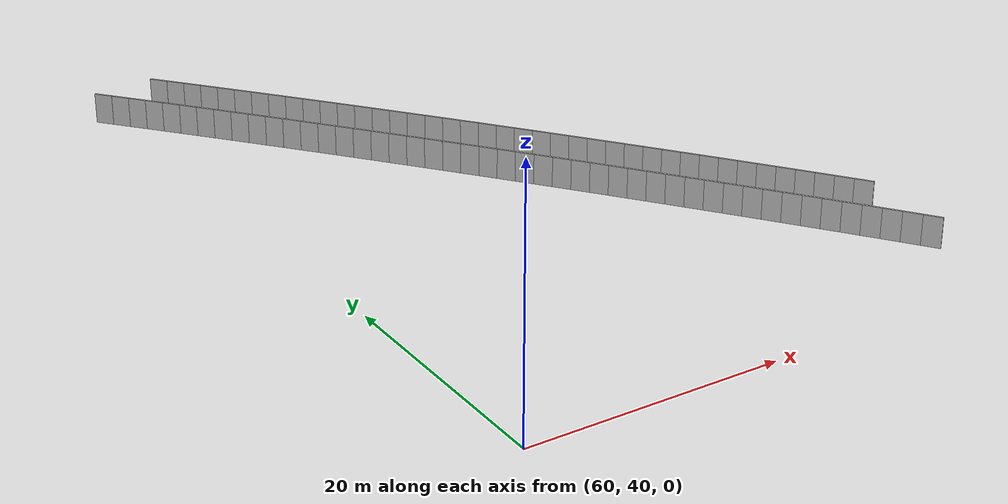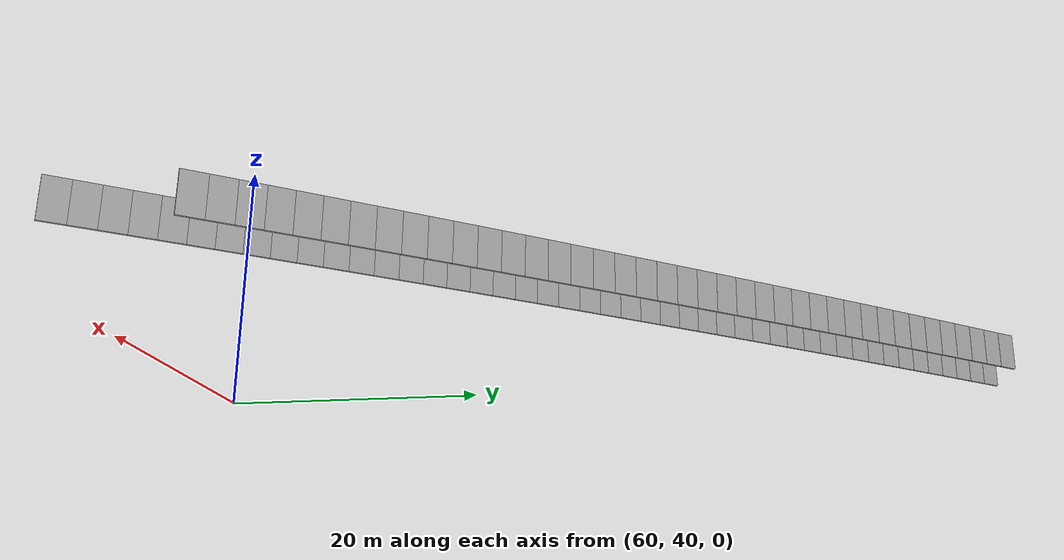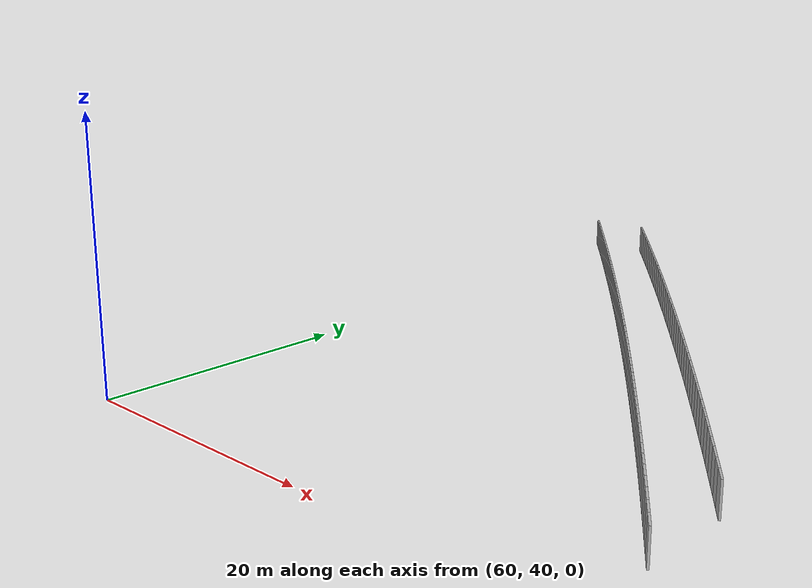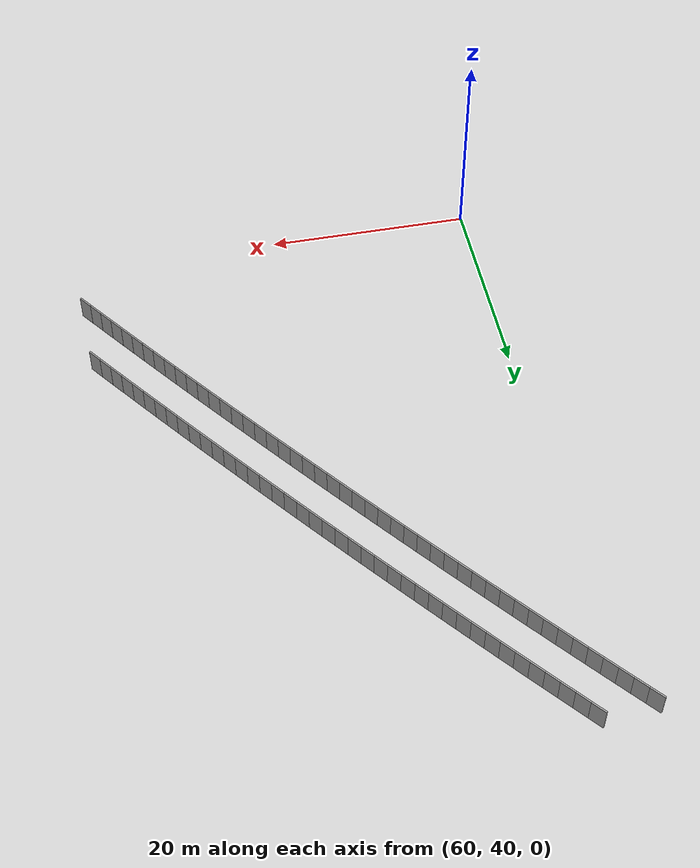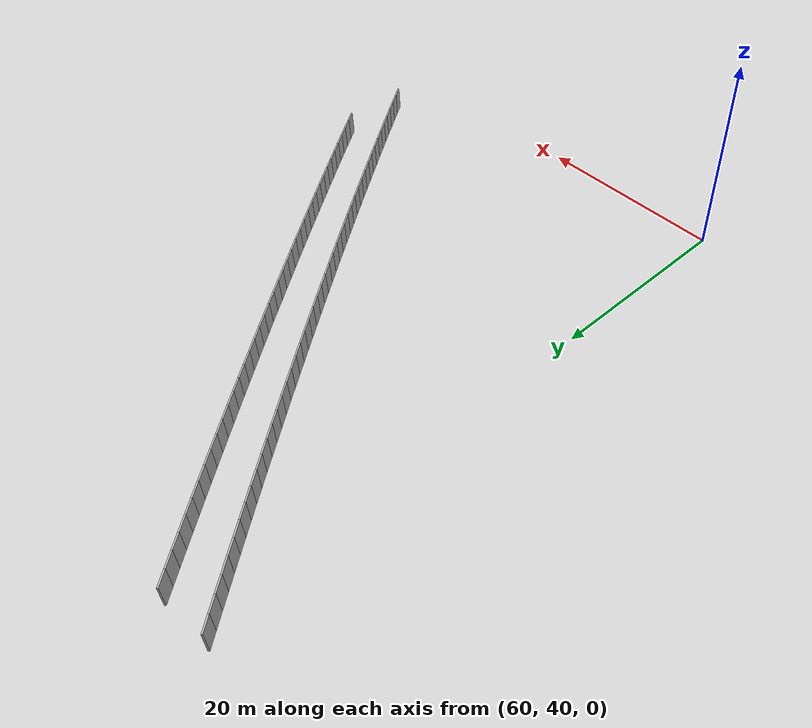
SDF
<?xml version="1.0" ?>
<sdf version="1.6">
  <model name="sps_2019">
    <pose frame="">0 0 0 0 -0 0</pose>
    <static>1</static>
    <self_collide>0</self_collide>
    <allow_auto_disable>0</allow_auto_disable>
    <link name="Wall10363">
      <kinematic>0</kinematic>
      <gravity>1</gravity>
      <self_collide>0</self_collide>
      <collision name="collision">
        <geometry>
          <box>
            <size>1.49648 0.15 2.5</size>
          </box>
        </geometry>
        <pose frame="">0 0 0 0 -0 0</pose>
      </collision>
      <visual name="visual">
        <geometry>
          <box>
            <size>1.49648 0.15 2.5</size>
          </box>
        </geometry>
        <pose frame="">0 0 0 0 -0 0</pose>
        <cast_shadows>1</cast_shadows>
        <transparency>0.0</transparency>
      </visual>
      <pose frame="">99.9647 46.8239 1.25 0 -0 2.20621</pose>
    </link>
    <link name="Wall10364">
      <kinematic>0</kinematic>
      <gravity>1</gravity>
      <self_collide>0</self_collide>
      <collision name="collision">
        <geometry>
          <box>
            <size>1.49617 0.15 2.5</size>
          </box>
        </geometry>
        <pose frame="">0 0 0 0 -0 0</pose>
      </collision>
      <visual name="visual">
        <geometry>
          <box>
            <size>1.49617 0.15 2.5</size>
          </box>
        </geometry>
        <pose frame="">0 0 0 0 -0 0</pose>
        <cast_shadows>1</cast_shadows>
        <transparency>0.0</transparency>
      </visual>
      <pose frame="">99.0753 48.0272 1.25 0 -0 2.2084</pose>
    </link>
    <link name="Wall10365">
      <kinematic>0</kinematic>
      <gravity>1</gravity>
      <self_collide>0</self_collide>
      <collision name="collision">
        <geometry>
          <box>
            <size>1.49663 0.15 2.5</size>
          </box>
        </geometry>
        <pose frame="">0 0 0 0 -0 0</pose>
      </collision>
      <visual name="visual">
        <geometry>
          <box>
            <size>1.49663 0.15 2.5</size>
          </box>
        </geometry>
        <pose frame="">0 0 0 0 -0 0</pose>
        <cast_shadows>1</cast_shadows>
        <transparency>0.0</transparency>
      </visual>
      <pose frame="">98.184 49.2292 1.25 0 -0 2.20929</pose>
    </link>
    <link name="Wall10366">
      <kinematic>0</kinematic>
      <gravity>1</gravity>
      <self_collide>0</self_collide>
      <collision name="collision">
        <geometry>
          <box>
            <size>1.49655 0.15 2.5</size>
          </box>
        </geometry>
        <pose frame="">0 0 0 0 -0 0</pose>
      </collision>
      <visual name="visual">
        <geometry>
          <box>
            <size>1.49655 0.15 2.5</size>
          </box>
        </geometry>
        <pose frame="">0 0 0 0 -0 0</pose>
        <cast_shadows>1</cast_shadows>
        <transparency>0.0</transparency>
      </visual>
      <pose frame="">97.2911 50.4302 1.25 0 -0 2.211</pose>
    </link>
    <link name="Wall10367">
      <kinematic>0</kinematic>
      <gravity>1</gravity>
      <self_collide>0</self_collide>
      <collision name="collision">
        <geometry>
          <box>
            <size>1.49638 0.15 2.5</size>
          </box>
        </geometry>
        <pose frame="">0 0 0 0 -0 0</pose>
      </collision>
      <visual name="visual">
        <geometry>
          <box>
            <size>1.49638 0.15 2.5</size>
          </box>
        </geometry>
        <pose frame="">0 0 0 0 -0 0</pose>
        <cast_shadows>1</cast_shadows>
        <transparency>0.0</transparency>
      </visual>
      <pose frame="">96.3962 51.6296 1.25 0 -0 2.21262</pose>
    </link>
    <link name="Wall10368">
      <kinematic>0</kinematic>
      <gravity>1</gravity>
      <self_collide>0</self_collide>
      <collision name="collision">
        <geometry>
          <box>
            <size>1.49661 0.15 2.5</size>
          </box>
        </geometry>
        <pose frame="">0 0 0 0 -0 0</pose>
      </collision>
      <visual name="visual">
        <geometry>
          <box>
            <size>1.49661 0.15 2.5</size>
          </box>
        </geometry>
        <pose frame="">0 0 0 0 -0 0</pose>
        <cast_shadows>1</cast_shadows>
        <transparency>0.0</transparency>
      </visual>
      <pose frame="">95.4994 52.8276 1.25 0 -0 2.21418</pose>
    </link>
    <link name="Wall10369">
      <kinematic>0</kinematic>
      <gravity>1</gravity>
      <self_collide>0</self_collide>
      <collision name="collision">
        <geometry>
          <box>
            <size>1.49655 0.15 2.5</size>
          </box>
        </geometry>
        <pose frame="">0 0 0 0 -0 0</pose>
      </collision>
      <visual name="visual">
        <geometry>
          <box>
            <size>1.49655 0.15 2.5</size>
          </box>
        </geometry>
        <pose frame="">0 0 0 0 -0 0</pose>
        <cast_shadows>1</cast_shadows>
        <transparency>0.0</transparency>
      </visual>
      <pose frame="">94.6006 54.0243 1.25 0 -0 2.21569</pose>
    </link>
    <link name="Wall10370">
      <kinematic>0</kinematic>
      <gravity>1</gravity>
      <self_collide>0</self_collide>
      <collision name="collision">
        <geometry>
          <box>
            <size>1.49649 0.15 2.5</size>
          </box>
        </geometry>
        <pose frame="">0 0 0 0 -0 0</pose>
      </collision>
      <visual name="visual">
        <geometry>
          <box>
            <size>1.49649 0.15 2.5</size>
          </box>
        </geometry>
        <pose frame="">0 0 0 0 -0 0</pose>
        <cast_shadows>1</cast_shadows>
        <transparency>0.0</transparency>
      </visual>
      <pose frame="">93.7 55.2195 1.25 0 -0 2.21741</pose>
    </link>
    <link name="Wall10371">
      <kinematic>0</kinematic>
      <gravity>1</gravity>
      <self_collide>0</self_collide>
      <collision name="collision">
        <geometry>
          <box>
            <size>1.49649 0.15 2.5</size>
          </box>
        </geometry>
        <pose frame="">0 0 0 0 -0 0</pose>
      </collision>
      <visual name="visual">
        <geometry>
          <box>
            <size>1.49649 0.15 2.5</size>
          </box>
        </geometry>
        <pose frame="">0 0 0 0 -0 0</pose>
        <cast_shadows>1</cast_shadows>
        <transparency>0.0</transparency>
      </visual>
      <pose frame="">92.7975 56.4132 1.25 0 -0 2.21889</pose>
    </link>
    <link name="Wall10372">
      <kinematic>0</kinematic>
      <gravity>1</gravity>
      <self_collide>0</self_collide>
      <collision name="collision">
        <geometry>
          <box>
            <size>1.49643 0.15 2.5</size>
          </box>
        </geometry>
        <pose frame="">0 0 0 0 -0 0</pose>
      </collision>
      <visual name="visual">
        <geometry>
          <box>
            <size>1.49643 0.15 2.5</size>
          </box>
        </geometry>
        <pose frame="">0 0 0 0 -0 0</pose>
        <cast_shadows>1</cast_shadows>
        <transparency>0.0</transparency>
      </visual>
      <pose frame="">91.8932 57.6055 1.25 0 -0 2.22046</pose>
    </link>
    <link name="Wall10373">
      <kinematic>0</kinematic>
      <gravity>1</gravity>
      <self_collide>0</self_collide>
      <collision name="collision">
        <geometry>
          <box>
            <size>1.49649 0.15 2.5</size>
          </box>
        </geometry>
        <pose frame="">0 0 0 0 -0 0</pose>
      </collision>
      <visual name="visual">
        <geometry>
          <box>
            <size>1.49649 0.15 2.5</size>
          </box>
        </geometry>
        <pose frame="">0 0 0 0 -0 0</pose>
        <cast_shadows>1</cast_shadows>
        <transparency>0.0</transparency>
      </visual>
      <pose frame="">90.9871 58.7964 1.25 0 -0 2.22206</pose>
    </link>
    <link name="Wall10374">
      <kinematic>0</kinematic>
      <gravity>1</gravity>
      <self_collide>0</self_collide>
      <collision name="collision">
        <geometry>
          <box>
            <size>1.49664 0.15 2.5</size>
          </box>
        </geometry>
        <pose frame="">0 0 0 0 -0 0</pose>
      </collision>
      <visual name="visual">
        <geometry>
          <box>
            <size>1.49664 0.15 2.5</size>
          </box>
        </geometry>
        <pose frame="">0 0 0 0 -0 0</pose>
        <cast_shadows>1</cast_shadows>
        <transparency>0.0</transparency>
      </visual>
      <pose frame="">90.0788 59.9859 1.25 0 -0 2.22373</pose>
    </link>
    <link name="Wall10375">
      <kinematic>0</kinematic>
      <gravity>1</gravity>
      <self_collide>0</self_collide>
      <collision name="collision">
        <geometry>
          <box>
            <size>1.49642 0.15 2.5</size>
          </box>
        </geometry>
        <pose frame="">0 0 0 0 -0 0</pose>
      </collision>
      <visual name="visual">
        <geometry>
          <box>
            <size>1.49642 0.15 2.5</size>
          </box>
        </geometry>
        <pose frame="">0 0 0 0 -0 0</pose>
        <cast_shadows>1</cast_shadows>
        <transparency>0.0</transparency>
      </visual>
      <pose frame="">89.1688 61.1739 1.25 0 -0 2.22529</pose>
    </link>
    <link name="Wall10376">
      <kinematic>0</kinematic>
      <gravity>1</gravity>
      <self_collide>0</self_collide>
      <collision name="collision">
        <geometry>
          <box>
            <size>1.4965 0.15 2.5</size>
          </box>
        </geometry>
        <pose frame="">0 0 0 0 -0 0</pose>
      </collision>
      <visual name="visual">
        <geometry>
          <box>
            <size>1.4965 0.15 2.5</size>
          </box>
        </geometry>
        <pose frame="">0 0 0 0 -0 0</pose>
        <cast_shadows>1</cast_shadows>
        <transparency>0.0</transparency>
      </visual>
      <pose frame="">88.2569 62.3604 1.25 0 -0 2.22684</pose>
    </link>
    <link name="Wall10377">
      <kinematic>0</kinematic>
      <gravity>1</gravity>
      <self_collide>0</self_collide>
      <collision name="collision">
        <geometry>
          <box>
            <size>1.49654 0.15 2.5</size>
          </box>
        </geometry>
        <pose frame="">0 0 0 0 -0 0</pose>
      </collision>
      <visual name="visual">
        <geometry>
          <box>
            <size>1.49654 0.15 2.5</size>
          </box>
        </geometry>
        <pose frame="">0 0 0 0 -0 0</pose>
        <cast_shadows>1</cast_shadows>
        <transparency>0.0</transparency>
      </visual>
      <pose frame="">87.343 63.5455 1.25 0 -0 2.22847</pose>
    </link>
    <link name="Wall10378">
      <kinematic>0</kinematic>
      <gravity>1</gravity>
      <self_collide>0</self_collide>
      <collision name="collision">
        <geometry>
          <box>
            <size>1.4964 0.15 2.5</size>
          </box>
        </geometry>
        <pose frame="">0 0 0 0 -0 0</pose>
      </collision>
      <visual name="visual">
        <geometry>
          <box>
            <size>1.4964 0.15 2.5</size>
          </box>
        </geometry>
        <pose frame="">0 0 0 0 -0 0</pose>
        <cast_shadows>1</cast_shadows>
        <transparency>0.0</transparency>
      </visual>
      <pose frame="">86.4275 64.7292 1.25 0 -0 2.22988</pose>
    </link>
    <link name="Wall10379">
      <kinematic>0</kinematic>
      <gravity>1</gravity>
      <self_collide>0</self_collide>
      <collision name="collision">
        <geometry>
          <box>
            <size>1.49652 0.15 2.5</size>
          </box>
        </geometry>
        <pose frame="">0 0 0 0 -0 0</pose>
      </collision>
      <visual name="visual">
        <geometry>
          <box>
            <size>1.49652 0.15 2.5</size>
          </box>
        </geometry>
        <pose frame="">0 0 0 0 -0 0</pose>
        <cast_shadows>1</cast_shadows>
        <transparency>0.0</transparency>
      </visual>
      <pose frame="">85.5101 65.9115 1.25 0 -0 2.23152</pose>
    </link>
    <link name="Wall10380">
      <kinematic>0</kinematic>
      <gravity>1</gravity>
      <self_collide>0</self_collide>
      <collision name="collision">
        <geometry>
          <box>
            <size>1.4964 0.15 2.5</size>
          </box>
        </geometry>
        <pose frame="">0 0 0 0 -0 0</pose>
      </collision>
      <visual name="visual">
        <geometry>
          <box>
            <size>1.4964 0.15 2.5</size>
          </box>
        </geometry>
        <pose frame="">0 0 0 0 -0 0</pose>
        <cast_shadows>1</cast_shadows>
        <transparency>0.0</transparency>
      </visual>
      <pose frame="">84.5908 67.0923 1.25 0 -0 2.23313</pose>
    </link>
    <link name="Wall10381">
      <kinematic>0</kinematic>
      <gravity>1</gravity>
      <self_collide>0</self_collide>
      <collision name="collision">
        <geometry>
          <box>
            <size>1.49665 0.15 2.5</size>
          </box>
        </geometry>
        <pose frame="">0 0 0 0 -0 0</pose>
      </collision>
      <visual name="visual">
        <geometry>
          <box>
            <size>1.49665 0.15 2.5</size>
          </box>
        </geometry>
        <pose frame="">0 0 0 0 -0 0</pose>
        <cast_shadows>1</cast_shadows>
        <transparency>0.0</transparency>
      </visual>
      <pose frame="">83.6695 68.2716 1.25 0 -0 2.23481</pose>
    </link>
    <link name="Wall10382">
      <kinematic>0</kinematic>
      <gravity>1</gravity>
      <self_collide>0</self_collide>
      <collision name="collision">
        <geometry>
          <box>
            <size>1.49652 0.15 2.5</size>
          </box>
        </geometry>
        <pose frame="">0 0 0 0 -0 0</pose>
      </collision>
      <visual name="visual">
        <geometry>
          <box>
            <size>1.49652 0.15 2.5</size>
          </box>
        </geometry>
        <pose frame="">0 0 0 0 -0 0</pose>
        <cast_shadows>1</cast_shadows>
        <transparency>0.0</transparency>
      </visual>
      <pose frame="">82.7463 69.4495 1.25 0 -0 2.23628</pose>
    </link>
    <link name="Wall10383">
      <kinematic>0</kinematic>
      <gravity>1</gravity>
      <self_collide>0</self_collide>
      <collision name="collision">
        <geometry>
          <box>
            <size>1.49651 0.15 2.5</size>
          </box>
        </geometry>
        <pose frame="">0 0 0 0 -0 0</pose>
      </collision>
      <visual name="visual">
        <geometry>
          <box>
            <size>1.49651 0.15 2.5</size>
          </box>
        </geometry>
        <pose frame="">0 0 0 0 -0 0</pose>
        <cast_shadows>1</cast_shadows>
        <transparency>0.0</transparency>
      </visual>
      <pose frame="">81.8213 70.6259 1.25 0 -0 2.238</pose>
    </link>
    <link name="Wall10384">
      <kinematic>0</kinematic>
      <gravity>1</gravity>
      <self_collide>0</self_collide>
      <collision name="collision">
        <geometry>
          <box>
            <size>1.49651 0.15 2.5</size>
          </box>
        </geometry>
        <pose frame="">0 0 0 0 -0 0</pose>
      </collision>
      <visual name="visual">
        <geometry>
          <box>
            <size>1.49651 0.15 2.5</size>
          </box>
        </geometry>
        <pose frame="">0 0 0 0 -0 0</pose>
        <cast_shadows>1</cast_shadows>
        <transparency>0.0</transparency>
      </visual>
      <pose frame="">80.8943 71.8008 1.25 0 -0 2.23951</pose>
    </link>
    <link name="Wall10385">
      <kinematic>0</kinematic>
      <gravity>1</gravity>
      <self_collide>0</self_collide>
      <collision name="collision">
        <geometry>
          <box>
            <size>1.49666 0.15 2.5</size>
          </box>
        </geometry>
        <pose frame="">0 0 0 0 -0 0</pose>
      </collision>
      <visual name="visual">
        <geometry>
          <box>
            <size>1.49666 0.15 2.5</size>
          </box>
        </geometry>
        <pose frame="">0 0 0 0 -0 0</pose>
        <cast_shadows>1</cast_shadows>
        <transparency>0.0</transparency>
      </visual>
      <pose frame="">79.9655 72.9743 1.25 0 -0 2.24114</pose>
    </link>
    <link name="Wall10386">
      <kinematic>0</kinematic>
      <gravity>1</gravity>
      <self_collide>0</self_collide>
      <collision name="collision">
        <geometry>
          <box>
            <size>1.49654 0.15 2.5</size>
          </box>
        </geometry>
        <pose frame="">0 0 0 0 -0 0</pose>
      </collision>
      <visual name="visual">
        <geometry>
          <box>
            <size>1.49654 0.15 2.5</size>
          </box>
        </geometry>
        <pose frame="">0 0 0 0 -0 0</pose>
        <cast_shadows>1</cast_shadows>
        <transparency>0.0</transparency>
      </visual>
      <pose frame="">79.0349 74.1464 1.25 0 -0 2.24256</pose>
    </link>
    <link name="Wall10387">
      <kinematic>0</kinematic>
      <gravity>1</gravity>
      <self_collide>0</self_collide>
      <collision name="collision">
        <geometry>
          <box>
            <size>1.49642 0.15 2.5</size>
          </box>
        </geometry>
        <pose frame="">0 0 0 0 -0 0</pose>
      </collision>
      <visual name="visual">
        <geometry>
          <box>
            <size>1.49642 0.15 2.5</size>
          </box>
        </geometry>
        <pose frame="">0 0 0 0 -0 0</pose>
        <cast_shadows>1</cast_shadows>
        <transparency>0.0</transparency>
      </visual>
      <pose frame="">78.1025 75.3169 1.25 0 -0 2.24435</pose>
    </link>
    <link name="Wall10388">
      <kinematic>0</kinematic>
      <gravity>1</gravity>
      <self_collide>0</self_collide>
      <collision name="collision">
        <geometry>
          <box>
            <size>1.49657 0.15 2.5</size>
          </box>
        </geometry>
        <pose frame="">0 0 0 0 -0 0</pose>
      </collision>
      <visual name="visual">
        <geometry>
          <box>
            <size>1.49657 0.15 2.5</size>
          </box>
        </geometry>
        <pose frame="">0 0 0 0 -0 0</pose>
        <cast_shadows>1</cast_shadows>
        <transparency>0.0</transparency>
      </visual>
      <pose frame="">77.1682 76.4859 1.25 0 -0 2.24578</pose>
    </link>
    <link name="Wall10389">
      <kinematic>0</kinematic>
      <gravity>1</gravity>
      <self_collide>0</self_collide>
      <collision name="collision">
        <geometry>
          <box>
            <size>1.49633 0.15 2.5</size>
          </box>
        </geometry>
        <pose frame="">0 0 0 0 -0 0</pose>
      </collision>
      <visual name="visual">
        <geometry>
          <box>
            <size>1.49633 0.15 2.5</size>
          </box>
        </geometry>
        <pose frame="">0 0 0 0 -0 0</pose>
        <cast_shadows>1</cast_shadows>
        <transparency>0.0</transparency>
      </visual>
      <pose frame="">76.2321 77.6534 1.25 0 -0 2.24747</pose>
    </link>
    <link name="Wall10390">
      <kinematic>0</kinematic>
      <gravity>1</gravity>
      <self_collide>0</self_collide>
      <collision name="collision">
        <geometry>
          <box>
            <size>1.4966 0.15 2.5</size>
          </box>
        </geometry>
        <pose frame="">0 0 0 0 -0 0</pose>
      </collision>
      <visual name="visual">
        <geometry>
          <box>
            <size>1.4966 0.15 2.5</size>
          </box>
        </geometry>
        <pose frame="">0 0 0 0 -0 0</pose>
        <cast_shadows>1</cast_shadows>
        <transparency>0.0</transparency>
      </visual>
      <pose frame="">75.2942 78.8194 1.25 0 -0 2.249</pose>
    </link>
    <link name="Wall10391">
      <kinematic>0</kinematic>
      <gravity>1</gravity>
      <self_collide>0</self_collide>
      <collision name="collision">
        <geometry>
          <box>
            <size>1.49647 0.15 2.5</size>
          </box>
        </geometry>
        <pose frame="">0 0 0 0 -0 0</pose>
      </collision>
      <visual name="visual">
        <geometry>
          <box>
            <size>1.49647 0.15 2.5</size>
          </box>
        </geometry>
        <pose frame="">0 0 0 0 -0 0</pose>
        <cast_shadows>1</cast_shadows>
        <transparency>0.0</transparency>
      </visual>
      <pose frame="">74.3543 79.984 1.25 0 -0 2.25065</pose>
    </link>
    <link name="Wall10392">
      <kinematic>0</kinematic>
      <gravity>1</gravity>
      <self_collide>0</self_collide>
      <collision name="collision">
        <geometry>
          <box>
            <size>1.49658 0.15 2.5</size>
          </box>
        </geometry>
        <pose frame="">0 0 0 0 -0 0</pose>
      </collision>
      <visual name="visual">
        <geometry>
          <box>
            <size>1.49658 0.15 2.5</size>
          </box>
        </geometry>
        <pose frame="">0 0 0 0 -0 0</pose>
        <cast_shadows>1</cast_shadows>
        <transparency>0.0</transparency>
      </visual>
      <pose frame="">73.4126 81.1471 1.25 0 -0 2.25216</pose>
    </link>
    <link name="Wall10393">
      <kinematic>0</kinematic>
      <gravity>1</gravity>
      <self_collide>0</self_collide>
      <collision name="collision">
        <geometry>
          <box>
            <size>1.49625 0.15 2.5</size>
          </box>
        </geometry>
        <pose frame="">0 0 0 0 -0 0</pose>
      </collision>
      <visual name="visual">
        <geometry>
          <box>
            <size>1.49625 0.15 2.5</size>
          </box>
        </geometry>
        <pose frame="">0 0 0 0 -0 0</pose>
        <cast_shadows>1</cast_shadows>
        <transparency>0.0</transparency>
      </visual>
      <pose frame="">72.469 82.3085 1.25 0 -0 2.25402</pose>
    </link>
    <link name="Wall10394">
      <kinematic>0</kinematic>
      <gravity>1</gravity>
      <self_collide>0</self_collide>
      <collision name="collision">
        <geometry>
          <box>
            <size>1.49634 0.15 2.5</size>
          </box>
        </geometry>
        <pose frame="">0 0 0 0 -0 0</pose>
      </collision>
      <visual name="visual">
        <geometry>
          <box>
            <size>1.49634 0.15 2.5</size>
          </box>
        </geometry>
        <pose frame="">0 0 0 0 -0 0</pose>
        <cast_shadows>1</cast_shadows>
        <transparency>0.0</transparency>
      </visual>
      <pose frame="">71.5236 83.4683 1.25 0 -0 2.25539</pose>
    </link>
    <link name="Wall10395">
      <kinematic>0</kinematic>
      <gravity>1</gravity>
      <self_collide>0</self_collide>
      <collision name="collision">
        <geometry>
          <box>
            <size>1.49668 0.15 2.5</size>
          </box>
        </geometry>
        <pose frame="">0 0 0 0 -0 0</pose>
      </collision>
      <visual name="visual">
        <geometry>
          <box>
            <size>1.49668 0.15 2.5</size>
          </box>
        </geometry>
        <pose frame="">0 0 0 0 -0 0</pose>
        <cast_shadows>1</cast_shadows>
        <transparency>0.0</transparency>
      </visual>
      <pose frame="">70.5763 84.6269 1.25 0 -0 2.25689</pose>
    </link>
    <link name="Wall10396">
      <kinematic>0</kinematic>
      <gravity>1</gravity>
      <self_collide>0</self_collide>
      <collision name="collision">
        <geometry>
          <box>
            <size>1.49643 0.15 2.5</size>
          </box>
        </geometry>
        <pose frame="">0 0 0 0 -0 0</pose>
      </collision>
      <visual name="visual">
        <geometry>
          <box>
            <size>1.49643 0.15 2.5</size>
          </box>
        </geometry>
        <pose frame="">0 0 0 0 -0 0</pose>
        <cast_shadows>1</cast_shadows>
        <transparency>0.0</transparency>
      </visual>
      <pose frame="">69.6273 85.784 1.25 0 -0 2.25862</pose>
    </link>
    <link name="Wall10397">
      <kinematic>0</kinematic>
      <gravity>1</gravity>
      <self_collide>0</self_collide>
      <collision name="collision">
        <geometry>
          <box>
            <size>1.49666 0.15 2.5</size>
          </box>
        </geometry>
        <pose frame="">0 0 0 0 -0 0</pose>
      </collision>
      <visual name="visual">
        <geometry>
          <box>
            <size>1.49666 0.15 2.5</size>
          </box>
        </geometry>
        <pose frame="">0 0 0 0 -0 0</pose>
        <cast_shadows>1</cast_shadows>
        <transparency>0.0</transparency>
      </visual>
      <pose frame="">68.6764 86.9396 1.25 0 -0 2.26002</pose>
    </link>
    <link name="Wall10398">
      <kinematic>0</kinematic>
      <gravity>1</gravity>
      <self_collide>0</self_collide>
      <collision name="collision">
        <geometry>
          <box>
            <size>1.49655 0.15 2.5</size>
          </box>
        </geometry>
        <pose frame="">0 0 0 0 -0 0</pose>
      </collision>
      <visual name="visual">
        <geometry>
          <box>
            <size>1.49655 0.15 2.5</size>
          </box>
        </geometry>
        <pose frame="">0 0 0 0 -0 0</pose>
        <cast_shadows>1</cast_shadows>
        <transparency>0.0</transparency>
      </visual>
      <pose frame="">67.7237 88.0938 1.25 0 -0 2.26167</pose>
    </link>
    <link name="Wall10399">
      <kinematic>0</kinematic>
      <gravity>1</gravity>
      <self_collide>0</self_collide>
      <collision name="collision">
        <geometry>
          <box>
            <size>1.49632 0.15 2.5</size>
          </box>
        </geometry>
        <pose frame="">0 0 0 0 -0 0</pose>
      </collision>
      <visual name="visual">
        <geometry>
          <box>
            <size>1.49632 0.15 2.5</size>
          </box>
        </geometry>
        <pose frame="">0 0 0 0 -0 0</pose>
        <cast_shadows>1</cast_shadows>
        <transparency>0.0</transparency>
      </visual>
      <pose frame="">66.7692 89.2463 1.25 0 -0 2.26333</pose>
    </link>
    <link name="Wall10400">
      <kinematic>0</kinematic>
      <gravity>1</gravity>
      <self_collide>0</self_collide>
      <collision name="collision">
        <geometry>
          <box>
            <size>1.49655 0.15 2.5</size>
          </box>
        </geometry>
        <pose frame="">0 0 0 0 -0 0</pose>
      </collision>
      <visual name="visual">
        <geometry>
          <box>
            <size>1.49655 0.15 2.5</size>
          </box>
        </geometry>
        <pose frame="">0 0 0 0 -0 0</pose>
        <cast_shadows>1</cast_shadows>
        <transparency>0.0</transparency>
      </visual>
      <pose frame="">65.8129 90.3973 1.25 0 -0 2.26479</pose>
    </link>
    <link name="Wall10401">
      <kinematic>0</kinematic>
      <gravity>1</gravity>
      <self_collide>0</self_collide>
      <collision name="collision">
        <geometry>
          <box>
            <size>1.49644 0.15 2.5</size>
          </box>
        </geometry>
        <pose frame="">0 0 0 0 -0 0</pose>
      </collision>
      <visual name="visual">
        <geometry>
          <box>
            <size>1.49644 0.15 2.5</size>
          </box>
        </geometry>
        <pose frame="">0 0 0 0 -0 0</pose>
        <cast_shadows>1</cast_shadows>
        <transparency>0.0</transparency>
      </visual>
      <pose frame="">64.8547 91.5468 1.25 0 -0 2.26655</pose>
    </link>
    <link name="Wall10402">
      <kinematic>0</kinematic>
      <gravity>1</gravity>
      <self_collide>0</self_collide>
      <collision name="collision">
        <geometry>
          <box>
            <size>1.49656 0.15 2.5</size>
          </box>
        </geometry>
        <pose frame="">0 0 0 0 -0 0</pose>
      </collision>
      <visual name="visual">
        <geometry>
          <box>
            <size>1.49656 0.15 2.5</size>
          </box>
        </geometry>
        <pose frame="">0 0 0 0 -0 0</pose>
        <cast_shadows>1</cast_shadows>
        <transparency>0.0</transparency>
      </visual>
      <pose frame="">63.8947 92.6948 1.25 0 -0 2.26792</pose>
    </link>
    <link name="Wall10403">
      <kinematic>0</kinematic>
      <gravity>1</gravity>
      <self_collide>0</self_collide>
      <collision name="collision">
        <geometry>
          <box>
            <size>1.49664 0.15 2.5</size>
          </box>
        </geometry>
        <pose frame="">0 0 0 0 -0 0</pose>
      </collision>
      <visual name="visual">
        <geometry>
          <box>
            <size>1.49664 0.15 2.5</size>
          </box>
        </geometry>
        <pose frame="">0 0 0 0 -0 0</pose>
        <cast_shadows>1</cast_shadows>
        <transparency>0.0</transparency>
      </visual>
      <pose frame="">62.9329 93.8414 1.25 0 -0 2.26963</pose>
    </link>
    <link name="Wall10404">
      <kinematic>0</kinematic>
      <gravity>1</gravity>
      <self_collide>0</self_collide>
      <collision name="collision">
        <geometry>
          <box>
            <size>1.49652 0.15 2.5</size>
          </box>
        </geometry>
        <pose frame="">0 0 0 0 -0 0</pose>
      </collision>
      <visual name="visual">
        <geometry>
          <box>
            <size>1.49652 0.15 2.5</size>
          </box>
        </geometry>
        <pose frame="">0 0 0 0 -0 0</pose>
        <cast_shadows>1</cast_shadows>
        <transparency>0.0</transparency>
      </visual>
      <pose frame="">61.9691 94.9864 1.25 0 -0 2.27125</pose>
    </link>
    <link name="Wall10405">
      <kinematic>0</kinematic>
      <gravity>1</gravity>
      <self_collide>0</self_collide>
      <collision name="collision">
        <geometry>
          <box>
            <size>1.49633 0.15 2.5</size>
          </box>
        </geometry>
        <pose frame="">0 0 0 0 -0 0</pose>
      </collision>
      <visual name="visual">
        <geometry>
          <box>
            <size>1.49633 0.15 2.5</size>
          </box>
        </geometry>
        <pose frame="">0 0 0 0 -0 0</pose>
        <cast_shadows>1</cast_shadows>
        <transparency>0.0</transparency>
      </visual>
      <pose frame="">61.0037 96.1298 1.25 0 -0 2.27274</pose>
    </link>
    <link name="Wall10406">
      <kinematic>0</kinematic>
      <gravity>1</gravity>
      <self_collide>0</self_collide>
      <collision name="collision">
        <geometry>
          <box>
            <size>1.49661 0.15 2.5</size>
          </box>
        </geometry>
        <pose frame="">0 0 0 0 -0 0</pose>
      </collision>
      <visual name="visual">
        <geometry>
          <box>
            <size>1.49661 0.15 2.5</size>
          </box>
        </geometry>
        <pose frame="">0 0 0 0 -0 0</pose>
        <cast_shadows>1</cast_shadows>
        <transparency>0.0</transparency>
      </visual>
      <pose frame="">60.0366 97.2717 1.25 0 -0 2.27435</pose>
    </link>
    <link name="Wall10407">
      <kinematic>0</kinematic>
      <gravity>1</gravity>
      <self_collide>0</self_collide>
      <collision name="collision">
        <geometry>
          <box>
            <size>1.4965 0.15 2.5</size>
          </box>
        </geometry>
        <pose frame="">0 0 0 0 -0 0</pose>
      </collision>
      <visual name="visual">
        <geometry>
          <box>
            <size>1.4965 0.15 2.5</size>
          </box>
        </geometry>
        <pose frame="">0 0 0 0 -0 0</pose>
        <cast_shadows>1</cast_shadows>
        <transparency>0.0</transparency>
      </visual>
      <pose frame="">59.0675 98.4121 1.25 0 -0 2.27596</pose>
    </link>
    <link name="Wall10408">
      <kinematic>0</kinematic>
      <gravity>1</gravity>
      <self_collide>0</self_collide>
      <collision name="collision">
        <geometry>
          <box>
            <size>1.49648 0.15 2.5</size>
          </box>
        </geometry>
        <pose frame="">0 0 0 0 -0 0</pose>
      </collision>
      <visual name="visual">
        <geometry>
          <box>
            <size>1.49648 0.15 2.5</size>
          </box>
        </geometry>
        <pose frame="">0 0 0 0 -0 0</pose>
        <cast_shadows>1</cast_shadows>
        <transparency>0.0</transparency>
      </visual>
      <pose frame="">58.0966 99.5509 1.25 0 -0 2.27758</pose>
    </link>
    <link name="Wall10964">
      <kinematic>0</kinematic>
      <gravity>1</gravity>
      <self_collide>0</self_collide>
      <collision name="collision">
        <geometry>
          <box>
            <size>1.50309 0.15 2.5</size>
          </box>
        </geometry>
        <pose frame="">0 0 0 0 -0 0</pose>
      </collision>
      <visual name="visual">
        <geometry>
          <box>
            <size>1.50309 0.15 2.5</size>
          </box>
        </geometry>
        <pose frame="">0 0 0 0 -0 0</pose>
        <cast_shadows>1</cast_shadows>
        <transparency>0.0</transparency>
      </visual>
      <pose frame="">99.7121 54.1081 1.25 0 -0 2.21262</pose>
    </link>
    <link name="Wall10965">
      <kinematic>0</kinematic>
      <gravity>1</gravity>
      <self_collide>0</self_collide>
      <collision name="collision">
        <geometry>
          <box>
            <size>1.50299 0.15 2.5</size>
          </box>
        </geometry>
        <pose frame="">0 0 0 0 -0 0</pose>
      </collision>
      <visual name="visual">
        <geometry>
          <box>
            <size>1.50299 0.15 2.5</size>
          </box>
        </geometry>
        <pose frame="">0 0 0 0 -0 0</pose>
        <cast_shadows>1</cast_shadows>
        <transparency>0.0</transparency>
      </visual>
      <pose frame="">98.8115 55.3114 1.25 0 -0 2.21409</pose>
    </link>
    <link name="Wall10966">
      <kinematic>0</kinematic>
      <gravity>1</gravity>
      <self_collide>0</self_collide>
      <collision name="collision">
        <geometry>
          <box>
            <size>1.50316 0.15 2.5</size>
          </box>
        </geometry>
        <pose frame="">0 0 0 0 -0 0</pose>
      </collision>
      <visual name="visual">
        <geometry>
          <box>
            <size>1.50316 0.15 2.5</size>
          </box>
        </geometry>
        <pose frame="">0 0 0 0 -0 0</pose>
        <cast_shadows>1</cast_shadows>
        <transparency>0.0</transparency>
      </visual>
      <pose frame="">97.9089 56.5133 1.25 0 -0 2.21573</pose>
    </link>
    <link name="Wall10967">
      <kinematic>0</kinematic>
      <gravity>1</gravity>
      <self_collide>0</self_collide>
      <collision name="collision">
        <geometry>
          <box>
            <size>1.50306 0.15 2.5</size>
          </box>
        </geometry>
        <pose frame="">0 0 0 0 -0 0</pose>
      </collision>
      <visual name="visual">
        <geometry>
          <box>
            <size>1.50306 0.15 2.5</size>
          </box>
        </geometry>
        <pose frame="">0 0 0 0 -0 0</pose>
        <cast_shadows>1</cast_shadows>
        <transparency>0.0</transparency>
      </visual>
      <pose frame="">97.0044 57.7138 1.25 0 -0 2.21726</pose>
    </link>
    <link name="Wall10968">
      <kinematic>0</kinematic>
      <gravity>1</gravity>
      <self_collide>0</self_collide>
      <collision name="collision">
        <geometry>
          <box>
            <size>1.50295 0.15 2.5</size>
          </box>
        </geometry>
        <pose frame="">0 0 0 0 -0 0</pose>
      </collision>
      <visual name="visual">
        <geometry>
          <box>
            <size>1.50295 0.15 2.5</size>
          </box>
        </geometry>
        <pose frame="">0 0 0 0 -0 0</pose>
        <cast_shadows>1</cast_shadows>
        <transparency>0.0</transparency>
      </visual>
      <pose frame="">96.098 58.9128 1.25 0 -0 2.21885</pose>
    </link>
    <link name="Wall10969">
      <kinematic>0</kinematic>
      <gravity>1</gravity>
      <self_collide>0</self_collide>
      <collision name="collision">
        <geometry>
          <box>
            <size>1.50307 0.15 2.5</size>
          </box>
        </geometry>
        <pose frame="">0 0 0 0 -0 0</pose>
      </collision>
      <visual name="visual">
        <geometry>
          <box>
            <size>1.50307 0.15 2.5</size>
          </box>
        </geometry>
        <pose frame="">0 0 0 0 -0 0</pose>
        <cast_shadows>1</cast_shadows>
        <transparency>0.0</transparency>
      </visual>
      <pose frame="">95.1898 60.1103 1.25 0 -0 2.22057</pose>
    </link>
    <link name="Wall10970">
      <kinematic>0</kinematic>
      <gravity>1</gravity>
      <self_collide>0</self_collide>
      <collision name="collision">
        <geometry>
          <box>
            <size>1.50306 0.15 2.5</size>
          </box>
        </geometry>
        <pose frame="">0 0 0 0 -0 0</pose>
      </collision>
      <visual name="visual">
        <geometry>
          <box>
            <size>1.50306 0.15 2.5</size>
          </box>
        </geometry>
        <pose frame="">0 0 0 0 -0 0</pose>
        <cast_shadows>1</cast_shadows>
        <transparency>0.0</transparency>
      </visual>
      <pose frame="">94.2795 61.3064 1.25 0 -0 2.2221</pose>
    </link>
    <link name="Wall10971">
      <kinematic>0</kinematic>
      <gravity>1</gravity>
      <self_collide>0</self_collide>
      <collision name="collision">
        <geometry>
          <box>
            <size>1.50325 0.15 2.5</size>
          </box>
        </geometry>
        <pose frame="">0 0 0 0 -0 0</pose>
      </collision>
      <visual name="visual">
        <geometry>
          <box>
            <size>1.50325 0.15 2.5</size>
          </box>
        </geometry>
        <pose frame="">0 0 0 0 -0 0</pose>
        <cast_shadows>1</cast_shadows>
        <transparency>0.0</transparency>
      </visual>
      <pose frame="">93.3674 62.5012 1.25 0 -0 2.22354</pose>
    </link>
    <link name="Wall10972">
      <kinematic>0</kinematic>
      <gravity>1</gravity>
      <self_collide>0</self_collide>
      <collision name="collision">
        <geometry>
          <box>
            <size>1.50298 0.15 2.5</size>
          </box>
        </geometry>
        <pose frame="">0 0 0 0 -0 0</pose>
      </collision>
      <visual name="visual">
        <geometry>
          <box>
            <size>1.50298 0.15 2.5</size>
          </box>
        </geometry>
        <pose frame="">0 0 0 0 -0 0</pose>
        <cast_shadows>1</cast_shadows>
        <transparency>0.0</transparency>
      </visual>
      <pose frame="">92.4534 63.6945 1.25 0 -0 2.22531</pose>
    </link>
    <link name="Wall10973">
      <kinematic>0</kinematic>
      <gravity>1</gravity>
      <self_collide>0</self_collide>
      <collision name="collision">
        <geometry>
          <box>
            <size>1.50315 0.15 2.5</size>
          </box>
        </geometry>
        <pose frame="">0 0 0 0 -0 0</pose>
      </collision>
      <visual name="visual">
        <geometry>
          <box>
            <size>1.50315 0.15 2.5</size>
          </box>
        </geometry>
        <pose frame="">0 0 0 0 -0 0</pose>
        <cast_shadows>1</cast_shadows>
        <transparency>0.0</transparency>
      </visual>
      <pose frame="">91.5374 64.8862 1.25 0 -0 2.22692</pose>
    </link>
    <link name="Wall10974">
      <kinematic>0</kinematic>
      <gravity>1</gravity>
      <self_collide>0</self_collide>
      <collision name="collision">
        <geometry>
          <box>
            <size>1.50299 0.15 2.5</size>
          </box>
        </geometry>
        <pose frame="">0 0 0 0 -0 0</pose>
      </collision>
      <visual name="visual">
        <geometry>
          <box>
            <size>1.50299 0.15 2.5</size>
          </box>
        </geometry>
        <pose frame="">0 0 0 0 -0 0</pose>
        <cast_shadows>1</cast_shadows>
        <transparency>0.0</transparency>
      </visual>
      <pose frame="">90.6196 66.0765 1.25 0 -0 2.22838</pose>
    </link>
    <link name="Wall10975">
      <kinematic>0</kinematic>
      <gravity>1</gravity>
      <self_collide>0</self_collide>
      <collision name="collision">
        <geometry>
          <box>
            <size>1.50293 0.15 2.5</size>
          </box>
        </geometry>
        <pose frame="">0 0 0 0 -0 0</pose>
      </collision>
      <visual name="visual">
        <geometry>
          <box>
            <size>1.50293 0.15 2.5</size>
          </box>
        </geometry>
        <pose frame="">0 0 0 0 -0 0</pose>
        <cast_shadows>1</cast_shadows>
        <transparency>0.0</transparency>
      </visual>
      <pose frame="">89.6999 67.2653 1.25 0 -0 2.23006</pose>
    </link>
    <link name="Wall10976">
      <kinematic>0</kinematic>
      <gravity>1</gravity>
      <self_collide>0</self_collide>
      <collision name="collision">
        <geometry>
          <box>
            <size>1.50325 0.15 2.5</size>
          </box>
        </geometry>
        <pose frame="">0 0 0 0 -0 0</pose>
      </collision>
      <visual name="visual">
        <geometry>
          <box>
            <size>1.50325 0.15 2.5</size>
          </box>
        </geometry>
        <pose frame="">0 0 0 0 -0 0</pose>
        <cast_shadows>1</cast_shadows>
        <transparency>0.0</transparency>
      </visual>
      <pose frame="">88.7783 68.4527 1.25 0 -0 2.23159</pose>
    </link>
    <link name="Wall10977">
      <kinematic>0</kinematic>
      <gravity>1</gravity>
      <self_collide>0</self_collide>
      <collision name="collision">
        <geometry>
          <box>
            <size>1.50293 0.15 2.5</size>
          </box>
        </geometry>
        <pose frame="">0 0 0 0 -0 0</pose>
      </collision>
      <visual name="visual">
        <geometry>
          <box>
            <size>1.50293 0.15 2.5</size>
          </box>
        </geometry>
        <pose frame="">0 0 0 0 -0 0</pose>
        <cast_shadows>1</cast_shadows>
        <transparency>0.0</transparency>
      </visual>
      <pose frame="">87.8549 69.6387 1.25 0 -0 2.23309</pose>
    </link>
    <link name="Wall10978">
      <kinematic>0</kinematic>
      <gravity>1</gravity>
      <self_collide>0</self_collide>
      <collision name="collision">
        <geometry>
          <box>
            <size>1.50322 0.15 2.5</size>
          </box>
        </geometry>
        <pose frame="">0 0 0 0 -0 0</pose>
      </collision>
      <visual name="visual">
        <geometry>
          <box>
            <size>1.50322 0.15 2.5</size>
          </box>
        </geometry>
        <pose frame="">0 0 0 0 -0 0</pose>
        <cast_shadows>1</cast_shadows>
        <transparency>0.0</transparency>
      </visual>
      <pose frame="">86.9296 70.8232 1.25 0 -0 2.2348</pose>
    </link>
    <link name="Wall10979">
      <kinematic>0</kinematic>
      <gravity>1</gravity>
      <self_collide>0</self_collide>
      <collision name="collision">
        <geometry>
          <box>
            <size>1.50305 0.15 2.5</size>
          </box>
        </geometry>
        <pose frame="">0 0 0 0 -0 0</pose>
      </collision>
      <visual name="visual">
        <geometry>
          <box>
            <size>1.50305 0.15 2.5</size>
          </box>
        </geometry>
        <pose frame="">0 0 0 0 -0 0</pose>
        <cast_shadows>1</cast_shadows>
        <transparency>0.0</transparency>
      </visual>
      <pose frame="">86.0023 72.0062 1.25 0 -0 2.23643</pose>
    </link>
    <link name="Wall10980">
      <kinematic>0</kinematic>
      <gravity>1</gravity>
      <self_collide>0</self_collide>
      <collision name="collision">
        <geometry>
          <box>
            <size>1.50319 0.15 2.5</size>
          </box>
        </geometry>
        <pose frame="">0 0 0 0 -0 0</pose>
      </collision>
      <visual name="visual">
        <geometry>
          <box>
            <size>1.50319 0.15 2.5</size>
          </box>
        </geometry>
        <pose frame="">0 0 0 0 -0 0</pose>
        <cast_shadows>1</cast_shadows>
        <transparency>0.0</transparency>
      </visual>
      <pose frame="">85.0732 73.1878 1.25 0 -0 2.23786</pose>
    </link>
    <link name="Wall10981">
      <kinematic>0</kinematic>
      <gravity>1</gravity>
      <self_collide>0</self_collide>
      <collision name="collision">
        <geometry>
          <box>
            <size>1.50289 0.15 2.5</size>
          </box>
        </geometry>
        <pose frame="">0 0 0 0 -0 0</pose>
      </collision>
      <visual name="visual">
        <geometry>
          <box>
            <size>1.50289 0.15 2.5</size>
          </box>
        </geometry>
        <pose frame="">0 0 0 0 -0 0</pose>
        <cast_shadows>1</cast_shadows>
        <transparency>0.0</transparency>
      </visual>
      <pose frame="">84.1424 74.3679 1.25 0 -0 2.23951</pose>
    </link>
    <link name="Wall10982">
      <kinematic>0</kinematic>
      <gravity>1</gravity>
      <self_collide>0</self_collide>
      <collision name="collision">
        <geometry>
          <box>
            <size>1.50308 0.15 2.5</size>
          </box>
        </geometry>
        <pose frame="">0 0 0 0 -0 0</pose>
      </collision>
      <visual name="visual">
        <geometry>
          <box>
            <size>1.50308 0.15 2.5</size>
          </box>
        </geometry>
        <pose frame="">0 0 0 0 -0 0</pose>
        <cast_shadows>1</cast_shadows>
        <transparency>0.0</transparency>
      </visual>
      <pose frame="">83.2096 75.5464 1.25 0 -0 2.24117</pose>
    </link>
    <link name="Wall10983">
      <kinematic>0</kinematic>
      <gravity>1</gravity>
      <self_collide>0</self_collide>
      <collision name="collision">
        <geometry>
          <box>
            <size>1.50298 0.15 2.5</size>
          </box>
        </geometry>
        <pose frame="">0 0 0 0 -0 0</pose>
      </collision>
      <visual name="visual">
        <geometry>
          <box>
            <size>1.50298 0.15 2.5</size>
          </box>
        </geometry>
        <pose frame="">0 0 0 0 -0 0</pose>
        <cast_shadows>1</cast_shadows>
        <transparency>0.0</transparency>
      </visual>
      <pose frame="">82.275 76.7235 1.25 0 -0 2.24252</pose>
    </link>
    <link name="Wall10984">
      <kinematic>0</kinematic>
      <gravity>1</gravity>
      <self_collide>0</self_collide>
      <collision name="collision">
        <geometry>
          <box>
            <size>1.50324 0.15 2.5</size>
          </box>
        </geometry>
        <pose frame="">0 0 0 0 -0 0</pose>
      </collision>
      <visual name="visual">
        <geometry>
          <box>
            <size>1.50324 0.15 2.5</size>
          </box>
        </geometry>
        <pose frame="">0 0 0 0 -0 0</pose>
        <cast_shadows>1</cast_shadows>
        <transparency>0.0</transparency>
      </visual>
      <pose frame="">81.3385 77.8992 1.25 0 -0 2.24431</pose>
    </link>
    <link name="Wall10985">
      <kinematic>0</kinematic>
      <gravity>1</gravity>
      <self_collide>0</self_collide>
      <collision name="collision">
        <geometry>
          <box>
            <size>1.50299 0.15 2.5</size>
          </box>
        </geometry>
        <pose frame="">0 0 0 0 -0 0</pose>
      </collision>
      <visual name="visual">
        <geometry>
          <box>
            <size>1.50299 0.15 2.5</size>
          </box>
        </geometry>
        <pose frame="">0 0 0 0 -0 0</pose>
        <cast_shadows>1</cast_shadows>
        <transparency>0.0</transparency>
      </visual>
      <pose frame="">80.4 79.0734 1.25 0 -0 2.24579</pose>
    </link>
    <link name="Wall10986">
      <kinematic>0</kinematic>
      <gravity>1</gravity>
      <self_collide>0</self_collide>
      <collision name="collision">
        <geometry>
          <box>
            <size>1.50312 0.15 2.5</size>
          </box>
        </geometry>
        <pose frame="">0 0 0 0 -0 0</pose>
      </collision>
      <visual name="visual">
        <geometry>
          <box>
            <size>1.50312 0.15 2.5</size>
          </box>
        </geometry>
        <pose frame="">0 0 0 0 -0 0</pose>
        <cast_shadows>1</cast_shadows>
        <transparency>0.0</transparency>
      </visual>
      <pose frame="">79.4599 80.2461 1.25 0 -0 2.24739</pose>
    </link>
    <link name="Wall10987">
      <kinematic>0</kinematic>
      <gravity>1</gravity>
      <self_collide>0</self_collide>
      <collision name="collision">
        <geometry>
          <box>
            <size>1.50282 0.15 2.5</size>
          </box>
        </geometry>
        <pose frame="">0 0 0 0 -0 0</pose>
      </collision>
      <visual name="visual">
        <geometry>
          <box>
            <size>1.50282 0.15 2.5</size>
          </box>
        </geometry>
        <pose frame="">0 0 0 0 -0 0</pose>
        <cast_shadows>1</cast_shadows>
        <transparency>0.0</transparency>
      </visual>
      <pose frame="">78.5176 81.417 1.25 0 -0 2.24948</pose>
    </link>
    <link name="Wall10988">
      <kinematic>0</kinematic>
      <gravity>1</gravity>
      <self_collide>0</self_collide>
      <collision name="collision">
        <geometry>
          <box>
            <size>1.50309 0.15 2.5</size>
          </box>
        </geometry>
        <pose frame="">0 0 0 0 -0 0</pose>
      </collision>
      <visual name="visual">
        <geometry>
          <box>
            <size>1.50309 0.15 2.5</size>
          </box>
        </geometry>
        <pose frame="">0 0 0 0 -0 0</pose>
        <cast_shadows>1</cast_shadows>
        <transparency>0.0</transparency>
      </visual>
      <pose frame="">77.5734 82.5864 1.25 0 -0 2.25053</pose>
    </link>
    <link name="Wall10989">
      <kinematic>0</kinematic>
      <gravity>1</gravity>
      <self_collide>0</self_collide>
      <collision name="collision">
        <geometry>
          <box>
            <size>1.50303 0.15 2.5</size>
          </box>
        </geometry>
        <pose frame="">0 0 0 0 -0 0</pose>
      </collision>
      <visual name="visual">
        <geometry>
          <box>
            <size>1.50303 0.15 2.5</size>
          </box>
        </geometry>
        <pose frame="">0 0 0 0 -0 0</pose>
        <cast_shadows>1</cast_shadows>
        <transparency>0.0</transparency>
      </visual>
      <pose frame="">76.6276 83.7546 1.25 0 -0 2.25223</pose>
    </link>
    <link name="Wall10990">
      <kinematic>0</kinematic>
      <gravity>1</gravity>
      <self_collide>0</self_collide>
      <collision name="collision">
        <geometry>
          <box>
            <size>1.50315 0.15 2.5</size>
          </box>
        </geometry>
        <pose frame="">0 0 0 0 -0 0</pose>
      </collision>
      <visual name="visual">
        <geometry>
          <box>
            <size>1.50315 0.15 2.5</size>
          </box>
        </geometry>
        <pose frame="">0 0 0 0 -0 0</pose>
        <cast_shadows>1</cast_shadows>
        <transparency>0.0</transparency>
      </visual>
      <pose frame="">75.68 84.9213 1.25 0 -0 2.25374</pose>
    </link>
    <link name="Wall10991">
      <kinematic>0</kinematic>
      <gravity>1</gravity>
      <self_collide>0</self_collide>
      <collision name="collision">
        <geometry>
          <box>
            <size>1.50303 0.15 2.5</size>
          </box>
        </geometry>
        <pose frame="">0 0 0 0 -0 0</pose>
      </collision>
      <visual name="visual">
        <geometry>
          <box>
            <size>1.50303 0.15 2.5</size>
          </box>
        </geometry>
        <pose frame="">0 0 0 0 -0 0</pose>
        <cast_shadows>1</cast_shadows>
        <transparency>0.0</transparency>
      </visual>
      <pose frame="">74.7305 86.0865 1.25 0 -0 2.25532</pose>
    </link>
    <link name="Wall10992">
      <kinematic>0</kinematic>
      <gravity>1</gravity>
      <self_collide>0</self_collide>
      <collision name="collision">
        <geometry>
          <box>
            <size>1.50306 0.15 2.5</size>
          </box>
        </geometry>
        <pose frame="">0 0 0 0 -0 0</pose>
      </collision>
      <visual name="visual">
        <geometry>
          <box>
            <size>1.50306 0.15 2.5</size>
          </box>
        </geometry>
        <pose frame="">0 0 0 0 -0 0</pose>
        <cast_shadows>1</cast_shadows>
        <transparency>0.0</transparency>
      </visual>
      <pose frame="">73.7792 87.2502 1.25 0 -0 2.25688</pose>
    </link>
    <link name="Wall10993">
      <kinematic>0</kinematic>
      <gravity>1</gravity>
      <self_collide>0</self_collide>
      <collision name="collision">
        <geometry>
          <box>
            <size>1.50316 0.15 2.5</size>
          </box>
        </geometry>
        <pose frame="">0 0 0 0 -0 0</pose>
      </collision>
      <visual name="visual">
        <geometry>
          <box>
            <size>1.50316 0.15 2.5</size>
          </box>
        </geometry>
        <pose frame="">0 0 0 0 -0 0</pose>
        <cast_shadows>1</cast_shadows>
        <transparency>0.0</transparency>
      </visual>
      <pose frame="">72.8259 88.4124 1.25 0 -0 2.25856</pose>
    </link>
    <link name="Wall10994">
      <kinematic>0</kinematic>
      <gravity>1</gravity>
      <self_collide>0</self_collide>
      <collision name="collision">
        <geometry>
          <box>
            <size>1.50301 0.15 2.5</size>
          </box>
        </geometry>
        <pose frame="">0 0 0 0 -0 0</pose>
      </collision>
      <visual name="visual">
        <geometry>
          <box>
            <size>1.50301 0.15 2.5</size>
          </box>
        </geometry>
        <pose frame="">0 0 0 0 -0 0</pose>
        <cast_shadows>1</cast_shadows>
        <transparency>0.0</transparency>
      </visual>
      <pose frame="">71.8708 89.573 1.25 0 -0 2.26017</pose>
    </link>
    <link name="Wall10995">
      <kinematic>0</kinematic>
      <gravity>1</gravity>
      <self_collide>0</self_collide>
      <collision name="collision">
        <geometry>
          <box>
            <size>1.50305 0.15 2.5</size>
          </box>
        </geometry>
        <pose frame="">0 0 0 0 -0 0</pose>
      </collision>
      <visual name="visual">
        <geometry>
          <box>
            <size>1.50305 0.15 2.5</size>
          </box>
        </geometry>
        <pose frame="">0 0 0 0 -0 0</pose>
        <cast_shadows>1</cast_shadows>
        <transparency>0.0</transparency>
      </visual>
      <pose frame="">70.914 90.7321 1.25 0 -0 2.26167</pose>
    </link>
    <link name="Wall10996">
      <kinematic>0</kinematic>
      <gravity>1</gravity>
      <self_collide>0</self_collide>
      <collision name="collision">
        <geometry>
          <box>
            <size>1.50314 0.15 2.5</size>
          </box>
        </geometry>
        <pose frame="">0 0 0 0 -0 0</pose>
      </collision>
      <visual name="visual">
        <geometry>
          <box>
            <size>1.50314 0.15 2.5</size>
          </box>
        </geometry>
        <pose frame="">0 0 0 0 -0 0</pose>
        <cast_shadows>1</cast_shadows>
        <transparency>0.0</transparency>
      </visual>
      <pose frame="">69.9553 91.8898 1.25 0 -0 2.26321</pose>
    </link>
    <link name="Wall10997">
      <kinematic>0</kinematic>
      <gravity>1</gravity>
      <self_collide>0</self_collide>
      <collision name="collision">
        <geometry>
          <box>
            <size>1.50283 0.15 2.5</size>
          </box>
        </geometry>
        <pose frame="">0 0 0 0 -0 0</pose>
      </collision>
      <visual name="visual">
        <geometry>
          <box>
            <size>1.50283 0.15 2.5</size>
          </box>
        </geometry>
        <pose frame="">0 0 0 0 -0 0</pose>
        <cast_shadows>1</cast_shadows>
        <transparency>0.0</transparency>
      </visual>
      <pose frame="">68.9949 93.0459 1.25 0 -0 2.2648</pose>
    </link>
    <link name="Wall10998">
      <kinematic>0</kinematic>
      <gravity>1</gravity>
      <self_collide>0</self_collide>
      <collision name="collision">
        <geometry>
          <box>
            <size>1.50312 0.15 2.5</size>
          </box>
        </geometry>
        <pose frame="">0 0 0 0 -0 0</pose>
      </collision>
      <visual name="visual">
        <geometry>
          <box>
            <size>1.50312 0.15 2.5</size>
          </box>
        </geometry>
        <pose frame="">0 0 0 0 -0 0</pose>
        <cast_shadows>1</cast_shadows>
        <transparency>0.0</transparency>
      </visual>
      <pose frame="">68.0326 94.2004 1.25 0 -0 2.26649</pose>
    </link>
    <link name="Wall10999">
      <kinematic>0</kinematic>
      <gravity>1</gravity>
      <self_collide>0</self_collide>
      <collision name="collision">
        <geometry>
          <box>
            <size>1.50308 0.15 2.5</size>
          </box>
        </geometry>
        <pose frame="">0 0 0 0 -0 0</pose>
      </collision>
      <visual name="visual">
        <geometry>
          <box>
            <size>1.50308 0.15 2.5</size>
          </box>
        </geometry>
        <pose frame="">0 0 0 0 -0 0</pose>
        <cast_shadows>1</cast_shadows>
        <transparency>0.0</transparency>
      </visual>
      <pose frame="">67.0683 95.3534 1.25 0 -0 2.2681</pose>
    </link>
    <link name="Wall11000">
      <kinematic>0</kinematic>
      <gravity>1</gravity>
      <self_collide>0</self_collide>
      <collision name="collision">
        <geometry>
          <box>
            <size>1.50309 0.15 2.5</size>
          </box>
        </geometry>
        <pose frame="">0 0 0 0 -0 0</pose>
      </collision>
      <visual name="visual">
        <geometry>
          <box>
            <size>1.50309 0.15 2.5</size>
          </box>
        </geometry>
        <pose frame="">0 0 0 0 -0 0</pose>
        <cast_shadows>1</cast_shadows>
        <transparency>0.0</transparency>
      </visual>
      <pose frame="">66.1022 96.5049 1.25 0 -0 2.26963</pose>
    </link>
    <link name="Wall11001">
      <kinematic>0</kinematic>
      <gravity>1</gravity>
      <self_collide>0</self_collide>
      <collision name="collision">
        <geometry>
          <box>
            <size>1.50311 0.15 2.5</size>
          </box>
        </geometry>
        <pose frame="">0 0 0 0 -0 0</pose>
      </collision>
      <visual name="visual">
        <geometry>
          <box>
            <size>1.50311 0.15 2.5</size>
          </box>
        </geometry>
        <pose frame="">0 0 0 0 -0 0</pose>
        <cast_shadows>1</cast_shadows>
        <transparency>0.0</transparency>
      </visual>
      <pose frame="">65.1343 97.6549 1.25 0 -0 2.27122</pose>
    </link>
    <link name="Wall11002">
      <kinematic>0</kinematic>
      <gravity>1</gravity>
      <self_collide>0</self_collide>
      <collision name="collision">
        <geometry>
          <box>
            <size>1.50313 0.15 2.5</size>
          </box>
        </geometry>
        <pose frame="">0 0 0 0 -0 0</pose>
      </collision>
      <visual name="visual">
        <geometry>
          <box>
            <size>1.50313 0.15 2.5</size>
          </box>
        </geometry>
        <pose frame="">0 0 0 0 -0 0</pose>
        <cast_shadows>1</cast_shadows>
        <transparency>0.0</transparency>
      </visual>
      <pose frame="">64.1646 98.8034 1.25 0 -0 2.27275</pose>
    </link>
    <link name="Wall11003">
      <kinematic>0</kinematic>
      <gravity>1</gravity>
      <self_collide>0</self_collide>
      <collision name="collision">
        <geometry>
          <box>
            <size>1.50315 0.15 2.5</size>
          </box>
        </geometry>
        <pose frame="">0 0 0 0 -0 0</pose>
      </collision>
      <visual name="visual">
        <geometry>
          <box>
            <size>1.50315 0.15 2.5</size>
          </box>
        </geometry>
        <pose frame="">0 0 0 0 -0 0</pose>
        <cast_shadows>1</cast_shadows>
        <transparency>0.0</transparency>
      </visual>
      <pose frame="">63.1931 99.9504 1.25 0 -0 2.27433</pose>
    </link>
  </model>
</sdf>
